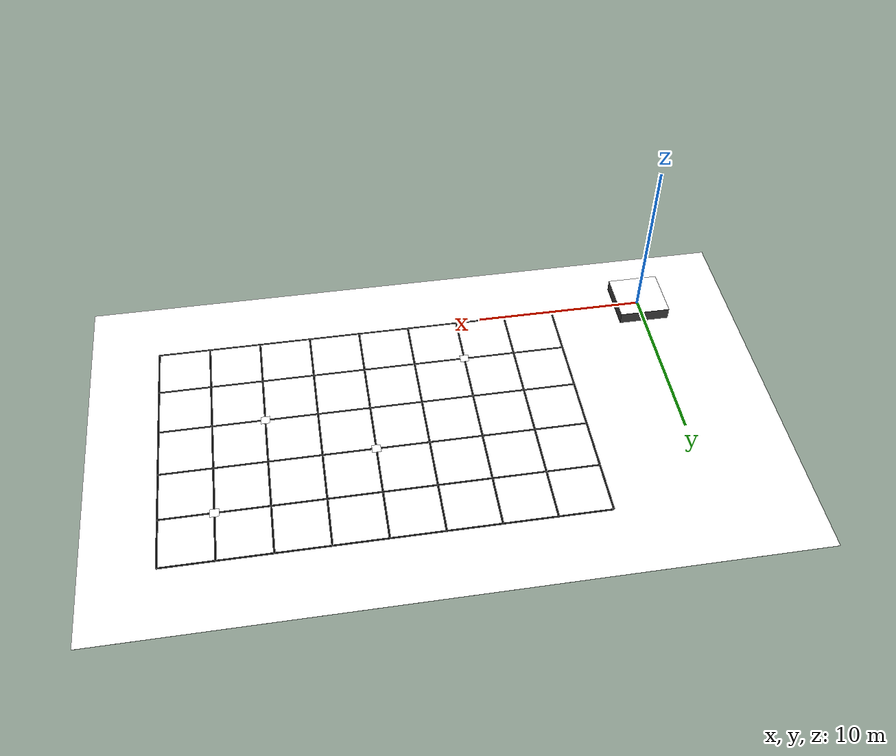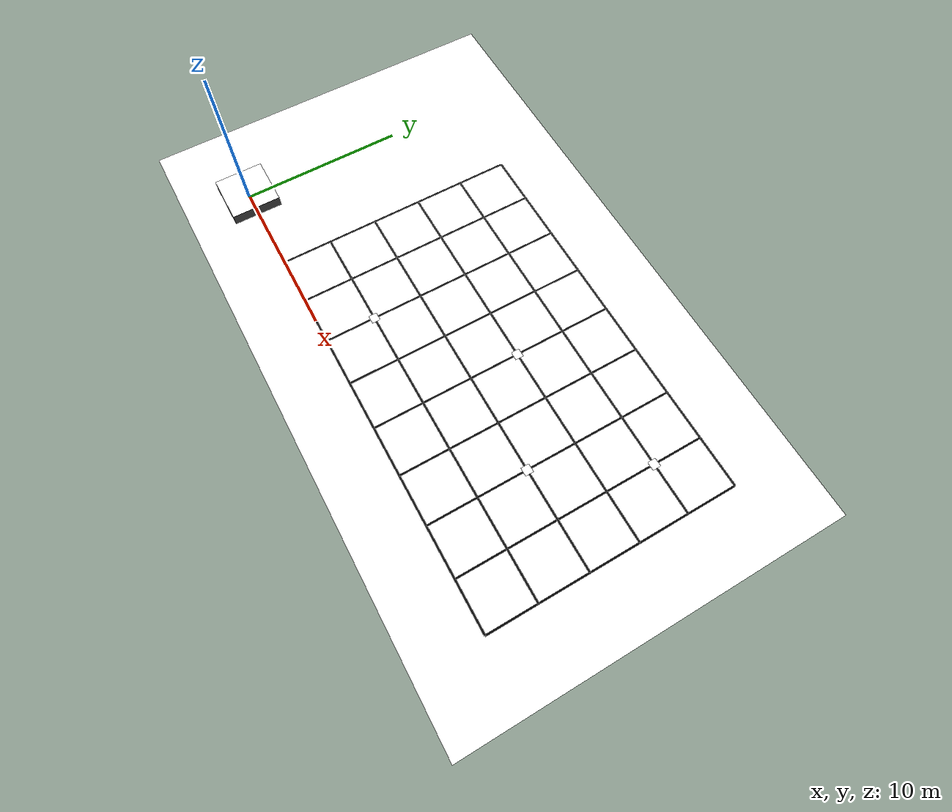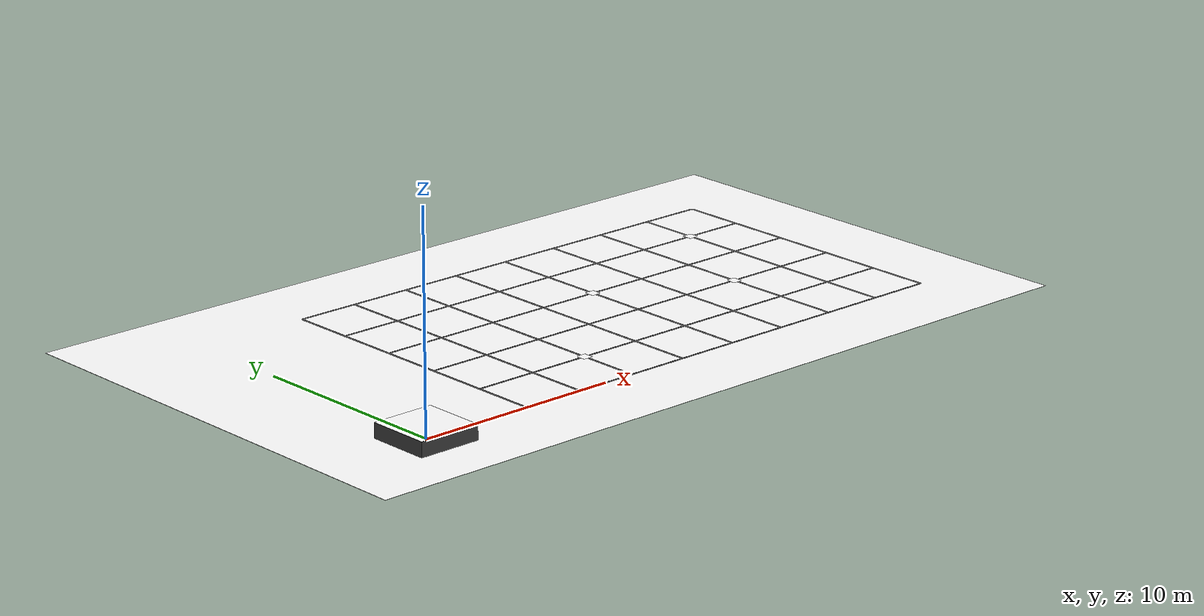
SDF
<sdf version="1.9">
 <world name="grid_arena_test_world">
  <physics name="1ms" type="ignore">
   <max_step_size>0.001</max_step_size>
   <real_time_factor>1.0</real_time_factor>
  </physics>
  <plugin filename="gz-sim-physics-system" name="gz::sim::systems::Physics"/>
  <plugin filename="gz-sim-sensors-system" name="gz::sim::systems::Sensors">
   <render_engine>ogre2</render_engine>
  </plugin>
  <plugin filename="gz-sim-user-commands-system" name="gz::sim::systems::UserCommands"/>
  <plugin filename="gz-sim-scene-broadcaster-system" name="gz::sim::systems::SceneBroadcaster"/>
  <plugin filename="gz-sim-imu-system" name="gz::sim::systems::Imu"/>
  <plugin filename="gz-sim-navsat-system" name="gz::sim::systems::NavSat"/>
  <scene><ambient>1.0 1.0 1.0</ambient><background>1.0 1.0 1.0</background><grid>false</grid></scene>
  <spherical_coordinates>
   <latitude_deg>-35.363262</latitude_deg>
   <longitude_deg>149.165237</longitude_deg>
   <elevation>584</elevation>
   <heading_deg>0</heading_deg>
   <surface_model>EARTH_WGS84</surface_model>
  </spherical_coordinates>
  <light type="directional" name="sun">
   <pose>0 0 10 0 0 0</pose>
   <diffuse>0.9 0.9 0.9 1</diffuse>
   <specular>0.6 0.6 0.6 1</specular>
   <attenuation>
    <range>1000</range>
    <constant>0.9</constant>
    <linear>0.01</linear>
    <quadratic>0.001</quadratic>
   </attenuation>
   <direction>-0.4 0.2 -0.9</direction>
  </light>
  <include><uri>model://astroquad_grid_course</uri></include>
 </world>
</sdf>

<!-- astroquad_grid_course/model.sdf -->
<sdf version="1.9">
  <model name="astroquad_grid_course">
    <static>true</static>

    <link name="course_link">
      <collision name="ground_collision">
        <pose>14.0 7.5 -0.005 0 0 0</pose>
        <geometry>
          <box>
            <size>39.0 23.0 0.01</size>
          </box>
        </geometry>
      </collision>

      <visual name="ground_visual">
        <pose>14.0 7.5 -0.005 0 0 0</pose>
        <geometry>
          <box>
            <size>39.0 23.0 0.01</size>
          </box>
        </geometry>
        <material>
          <ambient>1 1 1 1</ambient>
          <diffuse>1 1 1 1</diffuse>
          <specular>0.03 0.03 0.03 1</specular>
        </material>
      </visual>

      <!-- 3m x 3m x 0.7m vertiport box centered at origin, top surface at z = 0.7 -->
      <collision name="vertiport_box_collision">
        <pose>0 0 0.35 0 0 0</pose>
        <geometry>
          <box>
            <size>3.0 3.0 0.7</size>
          </box>
        </geometry>
      </collision>

      <visual name="vertiport_box_visual">
        <pose>0 0 0.35 0 0 0</pose>
        <geometry>
          <box>
            <size>3.0 3.0 0.7</size>
          </box>
        </geometry>
        <material>
          <ambient>0.25 0.25 0.25 1</ambient>
          <diffuse>0.25 0.25 0.25 1</diffuse>
          <specular>0.05 0.05 0.05 1</specular>
        </material>
      </visual>

      <!-- Vertiport top texture (3.0 x 3.0) slightly above the box top.
           Yaw 0deg leaves the texture image-up axis aligned with world +Y,
           90deg left of the previous +X-facing direction. -->
      <visual name="vertiport_top_texture">
        <pose degrees="true">0 0 0.701 0 0 0</pose>
        <geometry>
          <plane>
            <normal>0 0 1</normal>
            <size>3.0 3.0</size>
          </plane>
        </geometry>
        <material>
          <ambient>1 1 1 1</ambient>
          <diffuse>1 1 1 1</diffuse>
          <specular>0 0 0 1</specular>
          <pbr>
            <metal>
              <albedo_map>materials/textures/vertiport.png</albedo_map>
              <roughness>1.0</roughness>
              <metalness>0.0</metalness>
            </metal>
          </pbr>
        </material>
      </visual>

      <!-- 5x8 grid: cells of 3m, X intersections at 5.5..29.5, Y intersections at 0..15. -->
      <!-- Horizontal grid lines (constant Y, span X in [5.5, 29.5], length 24m) -->
      <visual name="grid_line_y0">
        <pose>17.5 0.0 0.006 0 0 0</pose>
        <geometry><box><size>24.0 0.10 0.008</size></box></geometry>
        <material>
          <ambient>0 0 0 1</ambient><diffuse>0 0 0 1</diffuse><emissive>0 0 0 1</emissive>
        </material>
      </visual>
      <visual name="grid_line_y3">
        <pose>17.5 3.0 0.006 0 0 0</pose>
        <geometry><box><size>24.0 0.10 0.008</size></box></geometry>
        <material>
          <ambient>0 0 0 1</ambient><diffuse>0 0 0 1</diffuse><emissive>0 0 0 1</emissive>
        </material>
      </visual>
      <visual name="grid_line_y6">
        <pose>17.5 6.0 0.006 0 0 0</pose>
        <geometry><box><size>24.0 0.10 0.008</size></box></geometry>
        <material>
          <ambient>0 0 0 1</ambient><diffuse>0 0 0 1</diffuse><emissive>0 0 0 1</emissive>
        </material>
      </visual>
      <visual name="grid_line_y9">
        <pose>17.5 9.0 0.006 0 0 0</pose>
        <geometry><box><size>24.0 0.10 0.008</size></box></geometry>
        <material>
          <ambient>0 0 0 1</ambient><diffuse>0 0 0 1</diffuse><emissive>0 0 0 1</emissive>
        </material>
      </visual>
      <visual name="grid_line_y12">
        <pose>17.5 12.0 0.006 0 0 0</pose>
        <geometry><box><size>24.0 0.10 0.008</size></box></geometry>
        <material>
          <ambient>0 0 0 1</ambient><diffuse>0 0 0 1</diffuse><emissive>0 0 0 1</emissive>
        </material>
      </visual>
      <visual name="grid_line_y15">
        <pose>17.5 15.0 0.006 0 0 0</pose>
        <geometry><box><size>24.0 0.10 0.008</size></box></geometry>
        <material>
          <ambient>0 0 0 1</ambient><diffuse>0 0 0 1</diffuse><emissive>0 0 0 1</emissive>
        </material>
      </visual>

      <!-- Vertical grid lines (constant X, span Y in [0, 15], length 15m) -->
      <visual name="grid_line_x5_5">
        <pose>5.5 7.5 0.006 0 0 0</pose>
        <geometry><box><size>0.10 15.0 0.008</size></box></geometry>
        <material>
          <ambient>0 0 0 1</ambient><diffuse>0 0 0 1</diffuse><emissive>0 0 0 1</emissive>
        </material>
      </visual>
      <visual name="grid_line_x8_5">
        <pose>8.5 7.5 0.006 0 0 0</pose>
        <geometry><box><size>0.10 15.0 0.008</size></box></geometry>
        <material>
          <ambient>0 0 0 1</ambient><diffuse>0 0 0 1</diffuse><emissive>0 0 0 1</emissive>
        </material>
      </visual>
      <visual name="grid_line_x11_5">
        <pose>11.5 7.5 0.006 0 0 0</pose>
        <geometry><box><size>0.10 15.0 0.008</size></box></geometry>
        <material>
          <ambient>0 0 0 1</ambient><diffuse>0 0 0 1</diffuse><emissive>0 0 0 1</emissive>
        </material>
      </visual>
      <visual name="grid_line_x14_5">
        <pose>14.5 7.5 0.006 0 0 0</pose>
        <geometry><box><size>0.10 15.0 0.008</size></box></geometry>
        <material>
          <ambient>0 0 0 1</ambient><diffuse>0 0 0 1</diffuse><emissive>0 0 0 1</emissive>
        </material>
      </visual>
      <visual name="grid_line_x17_5">
        <pose>17.5 7.5 0.006 0 0 0</pose>
        <geometry><box><size>0.10 15.0 0.008</size></box></geometry>
        <material>
          <ambient>0 0 0 1</ambient><diffuse>0 0 0 1</diffuse><emissive>0 0 0 1</emissive>
        </material>
      </visual>
      <visual name="grid_line_x20_5">
        <pose>20.5 7.5 0.006 0 0 0</pose>
        <geometry><box><size>0.10 15.0 0.008</size></box></geometry>
        <material>
          <ambient>0 0 0 1</ambient><diffuse>0 0 0 1</diffuse><emissive>0 0 0 1</emissive>
        </material>
      </visual>
      <visual name="grid_line_x23_5">
        <pose>23.5 7.5 0.006 0 0 0</pose>
        <geometry><box><size>0.10 15.0 0.008</size></box></geometry>
        <material>
          <ambient>0 0 0 1</ambient><diffuse>0 0 0 1</diffuse><emissive>0 0 0 1</emissive>
        </material>
      </visual>
      <visual name="grid_line_x26_5">
        <pose>26.5 7.5 0.006 0 0 0</pose>
        <geometry><box><size>0.10 15.0 0.008</size></box></geometry>
        <material>
          <ambient>0 0 0 1</ambient><diffuse>0 0 0 1</diffuse><emissive>0 0 0 1</emissive>
        </material>
      </visual>
      <visual name="grid_line_x29_5">
        <pose>29.5 7.5 0.006 0 0 0</pose>
        <geometry><box><size>0.10 15.0 0.008</size></box></geometry>
        <material>
          <ambient>0 0 0 1</ambient><diffuse>0 0 0 1</diffuse><emissive>0 0 0 1</emissive>
        </material>
      </visual>

      <!-- ArUco markers (50cm x 50cm, no white backing) at fixed pseudo-random
           intersections. One marker per ID 1..4. -->
      <visual name="marker_id1_texture">
        <pose>11.5 3.0 0.012 0 0 0</pose>
        <geometry><plane><normal>0 0 1</normal><size>0.50 0.50</size></plane></geometry>
        <material>
          <ambient>1 1 1 1</ambient><diffuse>1 1 1 1</diffuse><specular>0 0 0 1</specular>
          <pbr><metal>
            <albedo_map>materials/textures/aruco_id1.png</albedo_map>
            <roughness>1.0</roughness><metalness>0.0</metalness>
          </metal></pbr>
        </material>
      </visual>

      <visual name="marker_id2_texture">
        <pose>17.5 9.0 0.012 0 0 0</pose>
        <geometry><plane><normal>0 0 1</normal><size>0.50 0.50</size></plane></geometry>
        <material>
          <ambient>1 1 1 1</ambient><diffuse>1 1 1 1</diffuse><specular>0 0 0 1</specular>
          <pbr><metal>
            <albedo_map>materials/textures/aruco_id2.png</albedo_map>
            <roughness>1.0</roughness><metalness>0.0</metalness>
          </metal></pbr>
        </material>
      </visual>

      <visual name="marker_id3_texture">
        <pose>23.5 6.0 0.012 0 0 0</pose>
        <geometry><plane><normal>0 0 1</normal><size>0.50 0.50</size></plane></geometry>
        <material>
          <ambient>1 1 1 1</ambient><diffuse>1 1 1 1</diffuse><specular>0 0 0 1</specular>
          <pbr><metal>
            <albedo_map>materials/textures/aruco_id3.png</albedo_map>
            <roughness>1.0</roughness><metalness>0.0</metalness>
          </metal></pbr>
        </material>
      </visual>

      <visual name="marker_id4_texture">
        <pose>26.5 12.0 0.012 0 0 0</pose>
        <geometry><plane><normal>0 0 1</normal><size>0.50 0.50</size></plane></geometry>
        <material>
          <ambient>1 1 1 1</ambient><diffuse>1 1 1 1</diffuse><specular>0 0 0 1</specular>
          <pbr><metal>
            <albedo_map>materials/textures/aruco_id4.png</albedo_map>
            <roughness>1.0</roughness><metalness>0.0</metalness>
          </metal></pbr>
        </material>
      </visual>
    </link>
  </model>
</sdf>
